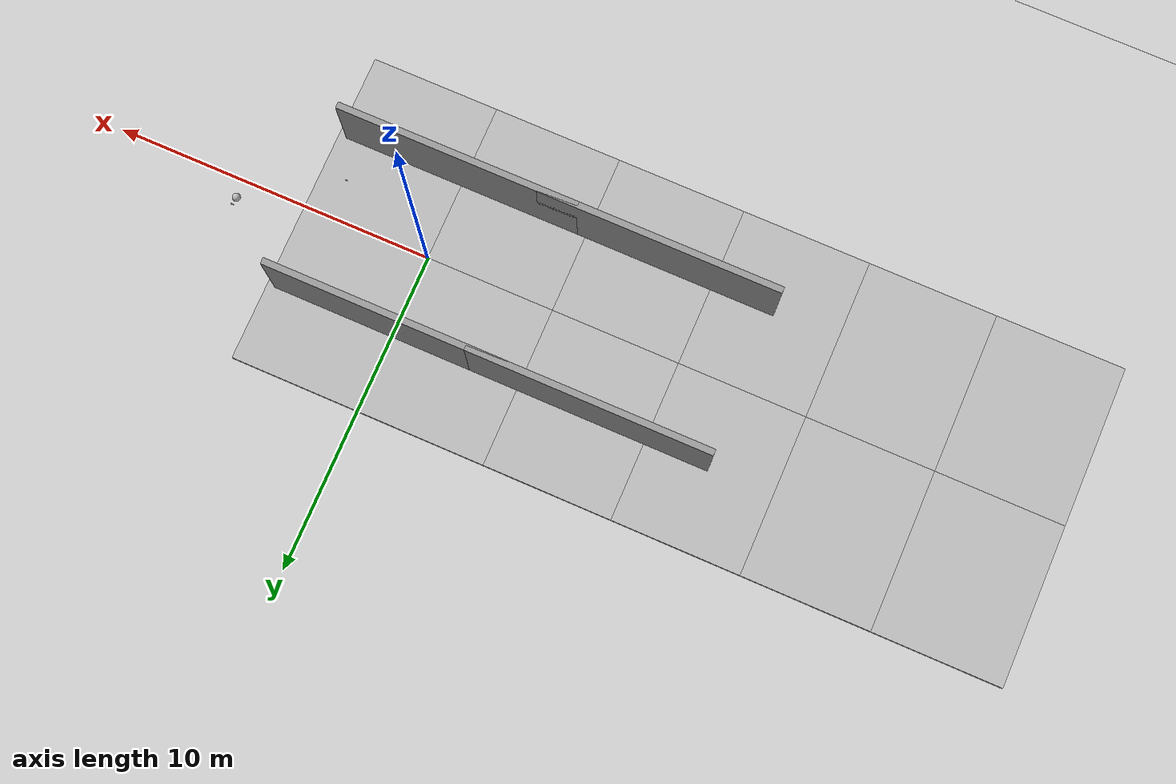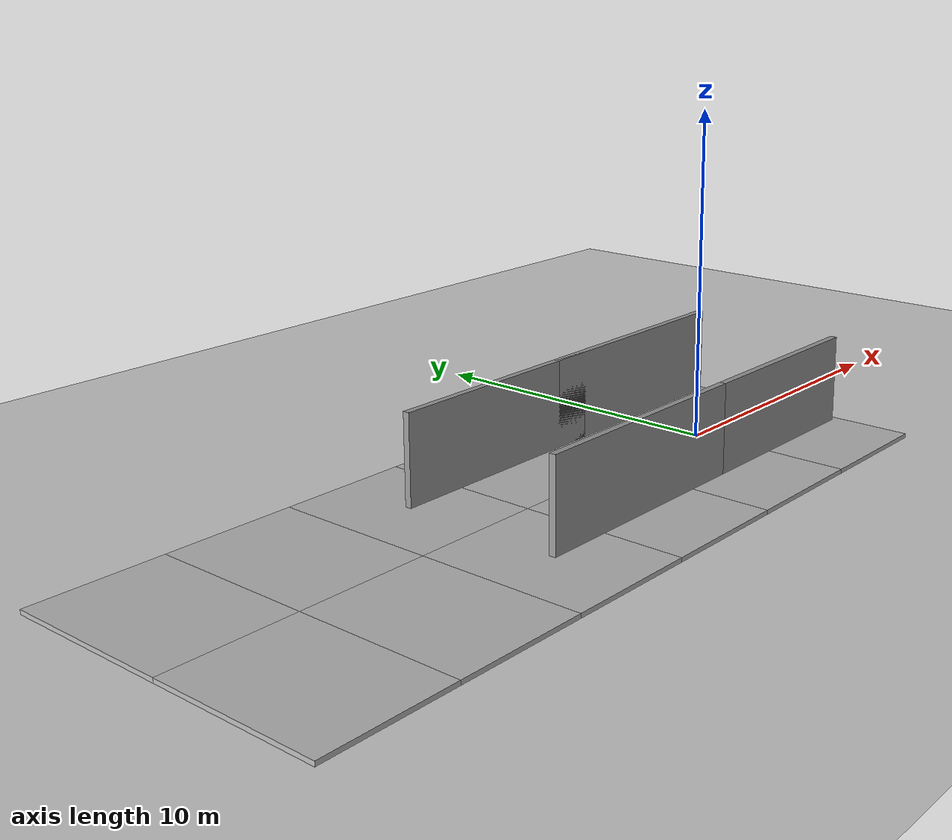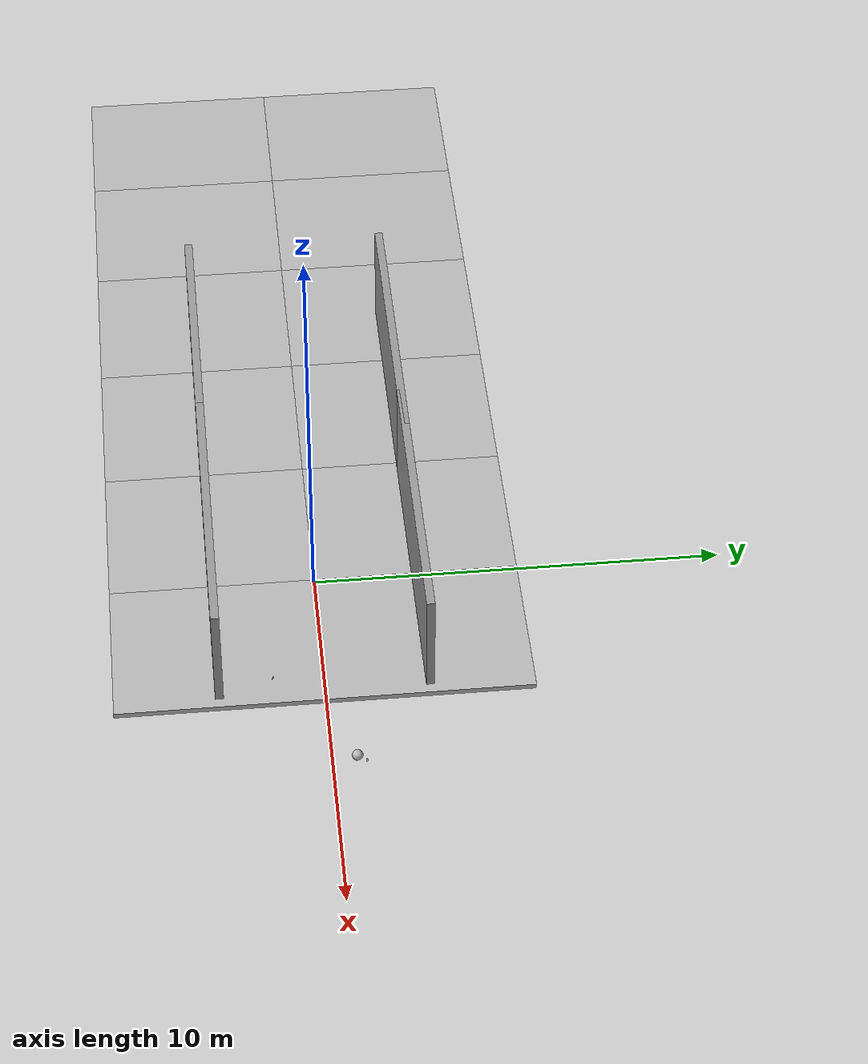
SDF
<sdf version="1.6">
 <world name="default">
  <model name="ground_plane">
   <static>1</static>
   <link name="link">
    <collision name="collision">
     <geometry><plane><normal>0 0 1</normal><size>100 100</size></plane></geometry>
     <surface><friction><ode><mu>100</mu><mu2>50</mu2></ode></friction></surface>
    </collision>
    <visual name="visual">
     <cast_shadows>0</cast_shadows>
     <geometry><plane><normal>0 0 1</normal><size>100 100</size></plane></geometry>
     <material>
      <script><uri>file://media/materials/scripts/gazebo.material</uri><name>Gazebo/Grey</name></script>
     </material>
    </visual>
   </link>
  </model>
  <model name="grey_wall">
   <static>1</static>
   <link name="link">
    <pose>0 0 1.4 0 -0 0</pose>
    <collision name="collision"><geometry><box><size>7.5 0.2 2.8</size></box></geometry></collision>
    <visual name="visual">
     <cast_shadows>0</cast_shadows>
     <geometry><box><size>7.5 0.2 2.8</size></box></geometry>
     <material>
      <script>
       <uri>model://grey_wall/materials/scripts</uri>
       <uri>model://grey_wall/materials/textures</uri>
       <name>vrc/grey_wall</name>
      </script>
     </material>
    </visual>
   </link>
   <pose>-6.25 2.5 0 0 -0 0</pose>
  </model>
  <model name="grey_wall_clone">
   <static>1</static>
   <link name="link">
    <pose>0 0 1.4 0 -0 0</pose>
    <collision name="collision"><geometry><box><size>7.5 0.2 2.8</size></box></geometry></collision>
    <visual name="visual">
     <cast_shadows>0</cast_shadows>
     <geometry><box><size>7.5 0.2 2.8</size></box></geometry>
     <material>
      <script>
       <uri>model://grey_wall/materials/scripts</uri>
       <uri>model://grey_wall/materials/textures</uri>
       <name>vrc/grey_wall</name>
      </script>
     </material>
    </visual>
   </link>
   <pose>0 2.5 0 0 -0 0</pose>
  </model>
  <model name="grey_wall_clone_0">
   <static>1</static>
   <link name="link">
    <pose>0 0 1.4 0 -0 0</pose>
    <collision name="collision"><geometry><box><size>7.5 0.2 2.8</size></box></geometry></collision>
    <visual name="visual">
     <cast_shadows>0</cast_shadows>
     <geometry><box><size>7.5 0.2 2.8</size></box></geometry>
     <material>
      <script>
       <uri>model://grey_wall/materials/scripts</uri>
       <uri>model://grey_wall/materials/textures</uri>
       <name>vrc/grey_wall</name>
      </script>
     </material>
    </visual>
   </link>
   <pose>-6.25 -2.5 0 0 -0 0</pose>
  </model>
  <model name="grey_wall_clone_2">
   <static>1</static>
   <link name="link">
    <pose>0 0 1.4 0 -0 0</pose>
    <collision name="collision"><geometry><box><size>7.5 0.2 2.8</size></box></geometry></collision>
    <visual name="visual">
     <cast_shadows>0</cast_shadows>
     <geometry><box><size>7.5 0.2 2.8</size></box></geometry>
     <material>
      <script>
       <uri>model://grey_wall/materials/scripts</uri>
       <uri>model://grey_wall/materials/textures</uri>
       <name>vrc/grey_wall</name>
      </script>
     </material>
    </visual>
   </link>
   <pose>0 -2.5 0 0 -0 0</pose>
  </model>
  <model name="wooden_peg">
   <link name="link">
    <pose>0 0 0.04 0 -0 0</pose>
    <inertial>
     <mass>0.0175</mass>
     <inertia>
      <ixx>9.74923e-06</ixx>
      <ixy>0</ixy>
      <ixz>0</ixz>
      <iyy>9.74923e-06</iyy>
      <iyz>0</iyz>
      <izz>8.31797e-07</izz>
     </inertia>
    </inertial>
    <collision name="collision">
     <geometry><cylinder><radius>0.00975</radius><length>0.08</length></cylinder></geometry>
     <surface>
      <contact>
       <poissons_ratio>0.347</poissons_ratio>
       <elastic_modulus>8.8e+09</elastic_modulus>
       <ode><kp>100000</kp><kd>100</kd><max_vel>100</max_vel><min_depth>0.001</min_depth></ode>
      </contact>
      <friction>
       <torsional>
        <coefficient>1</coefficient>
        <use_patch_radius>0</use_patch_radius>
        <surface_radius>0.01</surface_radius>
       </torsional>
      </friction>
     </surface>
    </collision>
    <visual name="visual">
     <geometry><cylinder><radius>0.00975</radius><length>0.08</length></cylinder></geometry>
     <material>
      <script><uri>file://media/materials/scripts/gazebo.material</uri><name>Gazebo/Wood</name></script>
     </material>
    </visual>
   </link>
   <pose>3.24617 -1.21147 0.108749 -1.11778 -1.56131 0.978251</pose>
  </model>
  <model name="stone_10_2_5_1cm">
   <link name="link">
    <pose>0 0 0.005 0 -0 0</pose>
    <inertial>
     <mass>0.0628</mass>
     <inertia>
      <ixx>3.79417e-06</ixx>
      <ixy>0</ixy>
      <ixz>0</ixz>
      <iyy>5.28567e-05</iyy>
      <iyz>0</iyz>
      <izz>5.56042e-05</izz>
     </inertia>
    </inertial>
    <collision name="collision">
     <geometry><box><size>0.1 0.025 0.01</size></box></geometry>
     <surface>
      <contact>
       <poissons_ratio>0.15</poissons_ratio>
       <elastic_modulus>8e+10</elastic_modulus>
       <ode><kp>100000</kp><kd>100</kd><max_vel>100</max_vel><min_depth>0.001</min_depth></ode>
      </contact>
      <friction>
       <torsional>
        <coefficient>1</coefficient>
        <use_patch_radius>0</use_patch_radius>
        <surface_radius>0.01</surface_radius>
       </torsional>
      </friction>
     </surface>
    </collision>
    <visual name="visual">
     <geometry><box><size>0.1 0.025 0.01</size></box></geometry>
     <material>
      <script><uri>file://media/materials/scripts/gazebo.material</uri><name>Gazebo/Grey</name></script>
     </material>
    </visual>
   </link>
   <pose>5.99357 0.803386 0.098998 0 -0 0</pose>
  </model>
  <model name="frc2016_ball_clone">
   <pose>5.93015 0.586815 0.226676 0 -0 0</pose>
   <link name="link">
    <inertial>
     <mass>0.213</mass>
     <inertia>
      <ixx>0.00322667</ixx>
      <ixy>0</ixy>
      <ixz>0</ixz>
      <iyy>0.00322667</iyy>
      <iyz>0</iyz>
      <izz>0.00322667</izz>
     </inertia>
    </inertial>
    <visual name="visual"><geometry><sphere><radius>0.127</radius></sphere></geometry></visual>
    <collision name="collision">
     <geometry><sphere><radius>0.127</radius></sphere></geometry>
     <surface>
      <bounce><restitution_coefficient>0.15937</restitution_coefficient><threshold>0</threshold></bounce>
      <contact><ode><max_vel>100</max_vel><min_depth>0.001</min_depth></ode></contact>
     </surface>
    </collision>
   </link>
  </model>
  <model name="mud_box">
   <static>1</static>
   <link name="link">
    <collision name="collision"><geometry><box><size>8 10 0.2</size></box></geometry></collision>
    <visual name="visual_1">
     <pose>-2 2.5 0 0 -0 0</pose>
     <cast_shadows>0</cast_shadows>
     <geometry><box><size>4 5 0.2</size></box></geometry>
     <material>
      <script>
       <uri>model://mud_box/materials/scripts</uri>
       <uri>model://mud_box/materials/textures</uri>
       <name>vrc/mud</name>
      </script>
     </material>
    </visual>
    <visual name="visual_2">
     <pose>2 2.5 0 0 -0 0</pose>
     <cast_shadows>0</cast_shadows>
     <geometry><box><size>4 5 0.2</size></box></geometry>
     <material>
      <script>
       <uri>model://mud_box/materials/scripts</uri>
       <uri>model://mud_box/materials/textures</uri>
       <name>vrc/mud</name>
      </script>
     </material>
    </visual>
    <visual name="visual_3">
     <pose>2 -2.5 0 0 -0 0</pose>
     <cast_shadows>0</cast_shadows>
     <geometry><box><size>4 5 0.2</size></box></geometry>
     <material>
      <script>
       <uri>model://mud_box/materials/scripts</uri>
       <uri>model://mud_box/materials/textures</uri>
       <name>vrc/mud</name>
      </script>
     </material>
    </visual>
    <visual name="visual_4">
     <pose>-2 -2.5 0 0 -0 0</pose>
     <cast_shadows>0</cast_shadows>
     <geometry><box><size>4 5 0.2</size></box></geometry>
     <material>
      <script>
       <uri>model://mud_box/materials/scripts</uri>
       <uri>model://mud_box/materials/textures</uri>
       <name>vrc/mud</name>
      </script>
     </material>
    </visual>
   </link>
  </model>
  <model name="mud_box_clone">
   <static>1</static>
   <link name="link">
    <collision name="collision"><geometry><box><size>8 10 0.2</size></box></geometry></collision>
    <visual name="visual_1">
     <pose>-2 2.5 0 0 -0 0</pose>
     <cast_shadows>0</cast_shadows>
     <geometry><box><size>4 5 0.2</size></box></geometry>
     <material>
      <script>
       <uri>model://mud_box/materials/scripts</uri>
       <uri>model://mud_box/materials/textures</uri>
       <name>vrc/mud</name>
      </script>
     </material>
    </visual>
    <visual name="visual_2">
     <pose>2 2.5 0 0 -0 0</pose>
     <cast_shadows>0</cast_shadows>
     <geometry><box><size>4 5 0.2</size></box></geometry>
     <material>
      <script>
       <uri>model://mud_box/materials/scripts</uri>
       <uri>model://mud_box/materials/textures</uri>
       <name>vrc/mud</name>
      </script>
     </material>
    </visual>
    <visual name="visual_3">
     <pose>2 -2.5 0 0 -0 0</pose>
     <cast_shadows>0</cast_shadows>
     <geometry><box><size>4 5 0.2</size></box></geometry>
     <material>
      <script>
       <uri>model://mud_box/materials/scripts</uri>
       <uri>model://mud_box/materials/textures</uri>
       <name>vrc/mud</name>
      </script>
     </material>
    </visual>
    <visual name="visual_4">
     <pose>-2 -2.5 0 0 -0 0</pose>
     <cast_shadows>0</cast_shadows>
     <geometry><box><size>4 5 0.2</size></box></geometry>
     <material>
      <script>
       <uri>model://mud_box/materials/scripts</uri>
       <uri>model://mud_box/materials/textures</uri>
       <name>vrc/mud</name>
      </script>
     </material>
    </visual>
   </link>
   <pose>-8 0 0 0 -0 0</pose>
  </model>
  <model name="mud_box_clone_0">
   <static>1</static>
   <link name="link">
    <collision name="collision"><geometry><box><size>8 10 0.2</size></box></geometry></collision>
    <visual name="visual_1">
     <pose>-2 2.5 0 0 -0 0</pose>
     <cast_shadows>0</cast_shadows>
     <geometry><box><size>4 5 0.2</size></box></geometry>
     <material>
      <script>
       <uri>model://mud_box/materials/scripts</uri>
       <uri>model://mud_box/materials/textures</uri>
       <name>vrc/mud</name>
      </script>
     </material>
    </visual>
    <visual name="visual_2">
     <pose>2 2.5 0 0 -0 0</pose>
     <cast_shadows>0</cast_shadows>
     <geometry><box><size>4 5 0.2</size></box></geometry>
     <material>
      <script>
       <uri>model://mud_box/materials/scripts</uri>
       <uri>model://mud_box/materials/textures</uri>
       <name>vrc/mud</name>
      </script>
     </material>
    </visual>
    <visual name="visual_3">
     <pose>2 -2.5 0 0 -0 0</pose>
     <cast_shadows>0</cast_shadows>
     <geometry><box><size>4 5 0.2</size></box></geometry>
     <material>
      <script>
       <uri>model://mud_box/materials/scripts</uri>
       <uri>model://mud_box/materials/textures</uri>
       <name>vrc/mud</name>
      </script>
     </material>
    </visual>
    <visual name="visual_4">
     <pose>-2 -2.5 0 0 -0 0</pose>
     <cast_shadows>0</cast_shadows>
     <geometry><box><size>4 5 0.2</size></box></geometry>
     <material>
      <script>
       <uri>model://mud_box/materials/scripts</uri>
       <uri>model://mud_box/materials/textures</uri>
       <name>vrc/mud</name>
      </script>
     </material>
    </visual>
   </link>
   <pose>-16 0 0 0 -0 0</pose>
  </model>
 </world>
</sdf>
